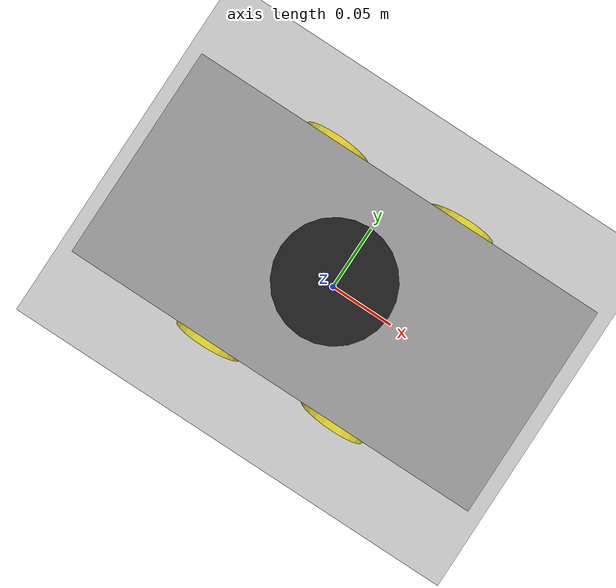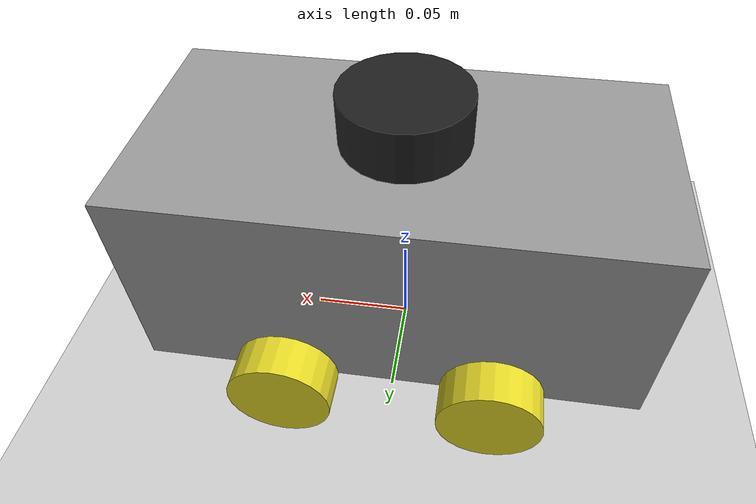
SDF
<sdf version="1.7">
 <world name="default">
  <light name="sun" type="directional">
   <pose>0 0 10 0 -0 0</pose>
   <diffuse>0.8 0.8 0.8 1</diffuse>
   <specular>0.2 0.2 0.2 1</specular>
   <attenuation>
    <range>1000</range>
    <constant>0.9</constant>
    <linear>0.01</linear>
    <quadratic>0.001</quadratic>
   </attenuation>
   <direction>-0.5 0.1 -0.9</direction>
   <spot><inner_angle>0</inner_angle><outer_angle>0</outer_angle><falloff>0</falloff></spot>
  </light>
  <model name="ground_plane">
   <static>1</static>
   <link name="link">
    <collision name="collision">
     <geometry><plane><normal>0 0 1</normal><size>100 100</size></plane></geometry>
     <surface><friction><ode><mu>100</mu><mu2>50</mu2></ode></friction></surface>
    </collision>
    <visual name="visual">
     <cast_shadows>0</cast_shadows>
     <geometry><plane><normal>0 0 1</normal><size>100 100</size></plane></geometry>
     <material>
      <script><uri>file://media/materials/scripts/gazebo.material</uri><name>Gazebo/Grey</name></script>
     </material>
    </visual>
   </link>
  </model>
  <gravity>0 0 -9.8</gravity>
  <magnetic_field>6e-06 2.3e-05 -4.2e-05</magnetic_field>
  <atmosphere type="adiabatic"/>
  <physics type="ode">
   <max_step_size>0.001</max_step_size>
   <real_time_factor>1</real_time_factor>
   <real_time_update_rate>1000</real_time_update_rate>
  </physics>
  <scene><ambient>0.4 0.4 0.4 1</ambient><background>0.7 0.7 0.7 1</background><shadows>1</shadows></scene>
  <audio><device>default</device></audio>
  <spherical_coordinates>
   <surface_model>EARTH_WGS84</surface_model>
   <latitude_deg>0</latitude_deg>
   <longitude_deg>0</longitude_deg>
   <elevation>0</elevation>
   <heading_deg>0</heading_deg>
  </spherical_coordinates>
  <model name="my_lidar_bot">
   <link name="base_link">
    <inertial>
     <pose>0 0 0.0125 0 -0 0</pose>
     <mass>1</mass>
     <inertia>
      <ixx>0.00230708</ixx>
      <ixy>0</ixy>
      <ixz>0</ixz>
      <iyy>0.00518708</iyy>
      <iyz>0</iyz>
      <izz>0.00489</izz>
     </inertia>
    </inertial>
    <collision name="base_link_fixed_joint_lump__chassis_collision">
     <geometry><box><size>0.24 0.12 0.1</size></box></geometry>
    </collision>
    <collision name="base_link_fixed_joint_lump__laser_frame_collision_1">
     <pose>0 0 0.0625 0 -0 0</pose>
     <geometry><cylinder><length>0.025</length><radius>0.03</radius></cylinder></geometry>
    </collision>
    <visual name="base_link_fixed_joint_lump__chassis_visual">
     <geometry><box><size>0.24 0.12 0.1</size></box></geometry>
     <material>
      <script><name>Gazebo/Grey</name><uri>file://media/materials/scripts/gazebo.material</uri></script>
     </material>
    </visual>
    <visual name="base_link_fixed_joint_lump__laser_frame_visual_1">
     <pose>0 0 0.0625 0 -0 0</pose>
     <geometry><cylinder><length>0.025</length><radius>0.03</radius></cylinder></geometry>
     <material>
      <script><name>Gazebo/Black</name><uri>file://media/materials/scripts/gazebo.material</uri></script>
     </material>
    </visual>
    <sensor name="rplidar" type="ray">
     <visualize>1</visualize>
     <always_on>1</always_on>
     <update_rate>10</update_rate>
     <ray>
      <scan>
       <horizontal>
        <samples>360</samples>
        <min_angle>-3.14</min_angle>
        <max_angle>3.14</max_angle>
        <resolution>1</resolution>
       </horizontal>
       <vertical><samples>1</samples><min_angle>0</min_angle><max_angle>0</max_angle></vertical>
      </scan>
      <range><min>0.3</min><max>12</max></range>
     </ray>
     <plugin name="laser_controller" filename="libgazebo_ros_ray_sensor.so">
      <ros><argument>~/out:=scan</argument></ros>
      <output_type>sensor_msgs/LaserScan</output_type>
      <frame_name>laser_frame</frame_name>
     </plugin>
     <pose>0 0 0.0625 0 -0 0</pose>
    </sensor>
   </link>
   <joint name="front_left_wheel_joint" type="revolute">
    <pose relative_to="base_link">0.05 0.07 -0.05 -1.5708 0 0</pose>
    <parent>base_link</parent>
    <child>front_left_wheel</child>
    <axis>
     <xyz>0 0 1</xyz>
     <limit><lower>-1e+16</lower><upper>1e+16</upper></limit>
     <dynamics><spring_reference>0</spring_reference><spring_stiffness>0</spring_stiffness></dynamics>
    </axis>
   </joint>
   <link name="front_left_wheel">
    <pose relative_to="front_left_wheel_joint">0 0 0 0 -0 0</pose>
    <inertial>
     <mass>0.05</mass>
     <inertia>
      <ixx>9.47917e-06</ixx>
      <ixy>0</ixy>
      <ixz>0</ixz>
      <iyy>9.47917e-06</iyy>
      <iyz>0</iyz>
      <izz>1.5625e-05</izz>
     </inertia>
    </inertial>
    <collision name="front_left_wheel_collision">
     <geometry><sphere><radius>0.025</radius></sphere></geometry>
    </collision>
    <visual name="front_left_wheel_visual">
     <geometry><cylinder><length>0.02</length><radius>0.025</radius></cylinder></geometry>
     <material>
      <script><name>Gazebo/Yellow</name><uri>file://media/materials/scripts/gazebo.material</uri></script>
     </material>
    </visual>
   </link>
   <joint name="front_right_wheel_joint" type="revolute">
    <pose relative_to="base_link">0.05 -0.07 -0.05 1.5708 -0 0</pose>
    <parent>base_link</parent>
    <child>front_right_wheel</child>
    <axis>
     <xyz>0 0 -1</xyz>
     <limit><lower>-1e+16</lower><upper>1e+16</upper></limit>
     <dynamics><spring_reference>0</spring_reference><spring_stiffness>0</spring_stiffness></dynamics>
    </axis>
   </joint>
   <link name="front_right_wheel">
    <pose relative_to="front_right_wheel_joint">0 0 0 0 -0 0</pose>
    <inertial>
     <mass>0.05</mass>
     <inertia>
      <ixx>9.47917e-06</ixx>
      <ixy>0</ixy>
      <ixz>0</ixz>
      <iyy>9.47917e-06</iyy>
      <iyz>0</iyz>
      <izz>1.5625e-05</izz>
     </inertia>
    </inertial>
    <collision name="front_right_wheel_collision">
     <geometry><sphere><radius>0.025</radius></sphere></geometry>
    </collision>
    <visual name="front_right_wheel_visual">
     <geometry><cylinder><length>0.02</length><radius>0.025</radius></cylinder></geometry>
     <material>
      <script><name>Gazebo/Yellow</name><uri>file://media/materials/scripts/gazebo.material</uri></script>
     </material>
    </visual>
   </link>
   <joint name="rear_left_wheel_joint" type="revolute">
    <pose relative_to="base_link">-0.05 0.07 -0.05 -1.5708 0 0</pose>
    <parent>base_link</parent>
    <child>rear_left_wheel</child>
    <axis>
     <xyz>0 0 1</xyz>
     <limit><lower>-1e+16</lower><upper>1e+16</upper></limit>
     <dynamics><spring_reference>0</spring_reference><spring_stiffness>0</spring_stiffness></dynamics>
    </axis>
   </joint>
   <link name="rear_left_wheel">
    <pose relative_to="rear_left_wheel_joint">0 0 0 0 -0 0</pose>
    <inertial>
     <mass>0.05</mass>
     <inertia>
      <ixx>9.47917e-06</ixx>
      <ixy>0</ixy>
      <ixz>0</ixz>
      <iyy>9.47917e-06</iyy>
      <iyz>0</iyz>
      <izz>1.5625e-05</izz>
     </inertia>
    </inertial>
    <collision name="rear_left_wheel_collision">
     <geometry><sphere><radius>0.025</radius></sphere></geometry>
    </collision>
    <visual name="rear_left_wheel_visual">
     <geometry><cylinder><length>0.02</length><radius>0.025</radius></cylinder></geometry>
     <material>
      <script><name>Gazebo/Yellow</name><uri>file://media/materials/scripts/gazebo.material</uri></script>
     </material>
    </visual>
   </link>
   <joint name="rear_right_wheel_joint" type="revolute">
    <pose relative_to="base_link">-0.05 -0.07 -0.05 1.5708 -0 0</pose>
    <parent>base_link</parent>
    <child>rear_right_wheel</child>
    <axis>
     <xyz>0 0 -1</xyz>
     <limit><lower>-1e+16</lower><upper>1e+16</upper></limit>
     <dynamics><spring_reference>0</spring_reference><spring_stiffness>0</spring_stiffness></dynamics>
    </axis>
   </joint>
   <link name="rear_right_wheel">
    <pose relative_to="rear_right_wheel_joint">0 0 0 0 -0 0</pose>
    <inertial>
     <mass>0.05</mass>
     <inertia>
      <ixx>9.47917e-06</ixx>
      <ixy>0</ixy>
      <ixz>0</ixz>
      <iyy>9.47917e-06</iyy>
      <iyz>0</iyz>
      <izz>1.5625e-05</izz>
     </inertia>
    </inertial>
    <collision name="rear_right_wheel_collision">
     <geometry><sphere><radius>0.025</radius></sphere></geometry>
    </collision>
    <visual name="rear_right_wheel_visual">
     <geometry><cylinder><length>0.02</length><radius>0.025</radius></cylinder></geometry>
     <material>
      <script><name>Gazebo/Yellow</name><uri>file://media/materials/scripts/gazebo.material</uri></script>
     </material>
    </visual>
   </link>
   <static>0</static>
   <plugin name="skid_steer_drive" filename="libgazebo_ros_diff_drive.so">
    <num_wheel_pairs>2</num_wheel_pairs>
    <left_joint>front_left_wheel_joint</left_joint>
    <right_joint>front_right_wheel_joint</right_joint>
    <left_joint>rear_left_wheel_joint</left_joint>
    <right_joint>rear_right_wheel_joint</right_joint>
    <wheel_separation>0.14</wheel_separation>
    <wheel_separation>0.14</wheel_separation>
    <wheel_diameter>0.05</wheel_diameter>
    <wheel_diameter>0.05</wheel_diameter>
    <max_wheel_torque>20</max_wheel_torque>
    <max_wheel_acceleration>1.0</max_wheel_acceleration>
    <publish_odom>1</publish_odom>
    <publish_odom_tf>1</publish_odom_tf>
    <publish_wheel_tf>1</publish_wheel_tf>
    <odometry_frame>odom</odometry_frame>
    <robot_base_frame>base_link</robot_base_frame>
   </plugin>
   <pose>-0.000672 0.003208 0.074999 0 -1.7e-05 -9.7e-05</pose>
  </model>
 </world>
</sdf>
